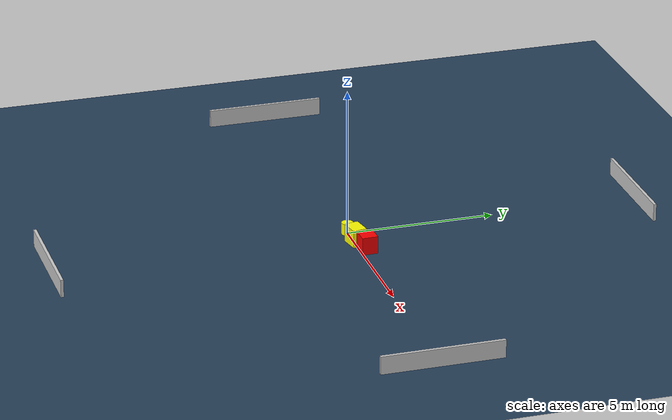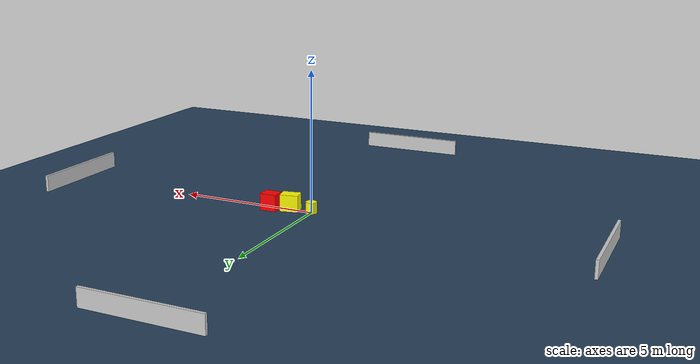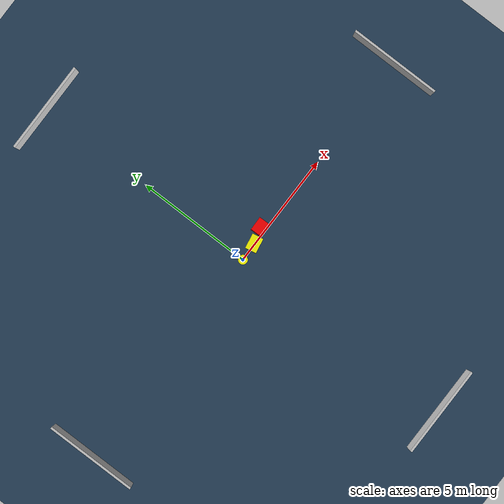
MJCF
<?xml version="1.0" ?>
<mujoco model="generated_environment">
  <option timestep="0.01" integrator="RK4" cone="elliptic"/>
  <default>
    <geom density="1"/>
  </default>
  <asset>
    <texture builtin="gradient" height="3072" name="skybox" rgb1="0.3 0.5 0.7" rgb2="0 0 0" type="skybox" width="512"/>
    <texture builtin="checker" height="300" name="groundplane" rgb1="0.2 0.3 0.4" rgb2="0.1 0.2 0.3" type="2d" width="300"/>
    <material name="groundplane" reflectance="0.2" texrepeat="5 5" texture="groundplane"/>
  </asset>
  <worldbody>
    <light dir="0 0 -1" directional="true" pos="0 0 1.5"/>
    <geom condim="3" friction="0.5 0.005 0.001" material="groundplane" name="floor" pos="0 0 0" size="0 0 0.05" type="plane"/>
    <body name="walls">
      <geom name="wall_1" condim="4" pos="-10.0 0.0 0.3" rgba="0.800000011920929 0.800000011920929 0.800000011920929 1.0" size="0.05 2.0 0.3" type="box"/>
      <geom name="wall_2" condim="4" pos="10.0 0.0 0.3" rgba="0.800000011920929 0.800000011920929 0.800000011920929 1.0" size="0.05 2.0 0.3" type="box"/>
      <geom name="wall_3" condim="4" pos="0.0 -10.0 0.3" rgba="0.800000011920929 0.800000011920929 0.800000011920929 1.0" size="2.0 0.05 0.3" type="box"/>
      <geom name="wall_4" condim="4" pos="0.0 10.0 0.3" rgba="0.800000011920929 0.800000011920929 0.800000011920929 1.0" size="2.0 0.05 0.3" type="box"/>
    </body>
    <body name="robot">
      <joint name="joint_x" type="slide" pos="0 0 0" axis="1 0 0"/>
      <joint name="joint_y" type="slide" pos="0 0 0" axis="0 1 0"/>
      <geom name="robot" type="cylinder" pos="0.0 0.0 0.2" size="0.2 0.2 0.0" mass="5.0" friction="1.0 0.005 0.0001" condim="4" rgba="1.0 1.0 0.0 1.0"/>
    </body>
    <body name="obstacle_1_movable">
      <geom name="obstacle_1_movable" condim="4" pos="0.7934098676171878 0.036754516690440386 0.3" euler="0 0 190.5692645497245" friction="0.0 0.005 0.001" rgba="1.0 1.0 0.0 1.0" size="0.3240508019595213 0.2409422408028944 0.3" type="box" mass="0.1"/>
      <joint type="free"/>
    </body>
    <body name="obstacle_2_static">
      <geom name="obstacle_2_static" condim="4" pos="1.46669000163112 0.22880365043485054 0.3" euler="0 0 1.2301924354314941" friction="0.0 0.005 0.001" rgba="1.0 0.0 0.0 1.0" size="0.29939400326329824 0.2643101469094062 0.3" type="box"/>
    </body>
  </worldbody>
  <actuator>
    <motor name="actuator_x" joint="joint_x" gear="1" ctrlrange="-1 1"/>
    <motor name="actuator_y" joint="joint_y" gear="1" ctrlrange="-1 1"/>
  </actuator>
</mujoco>
